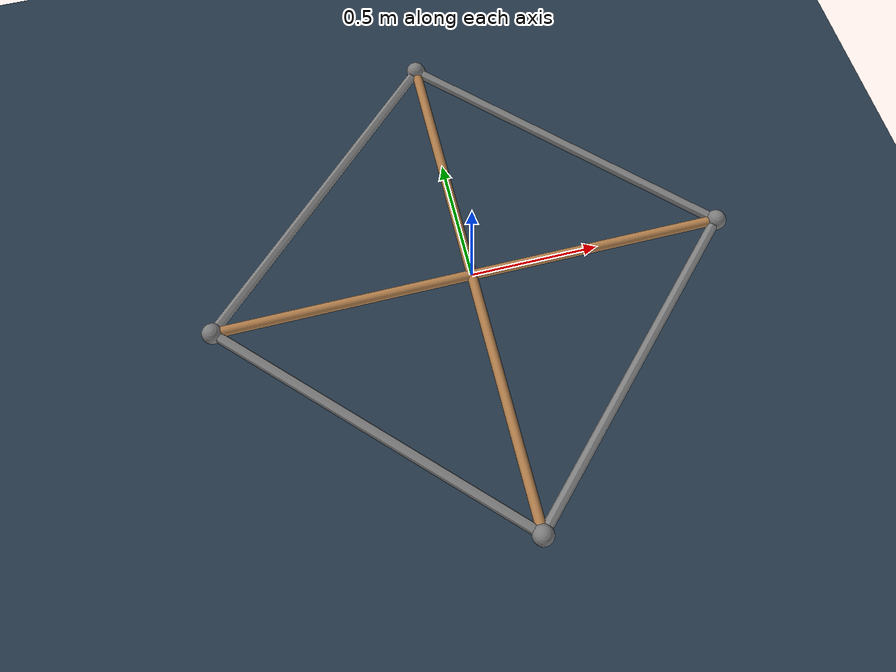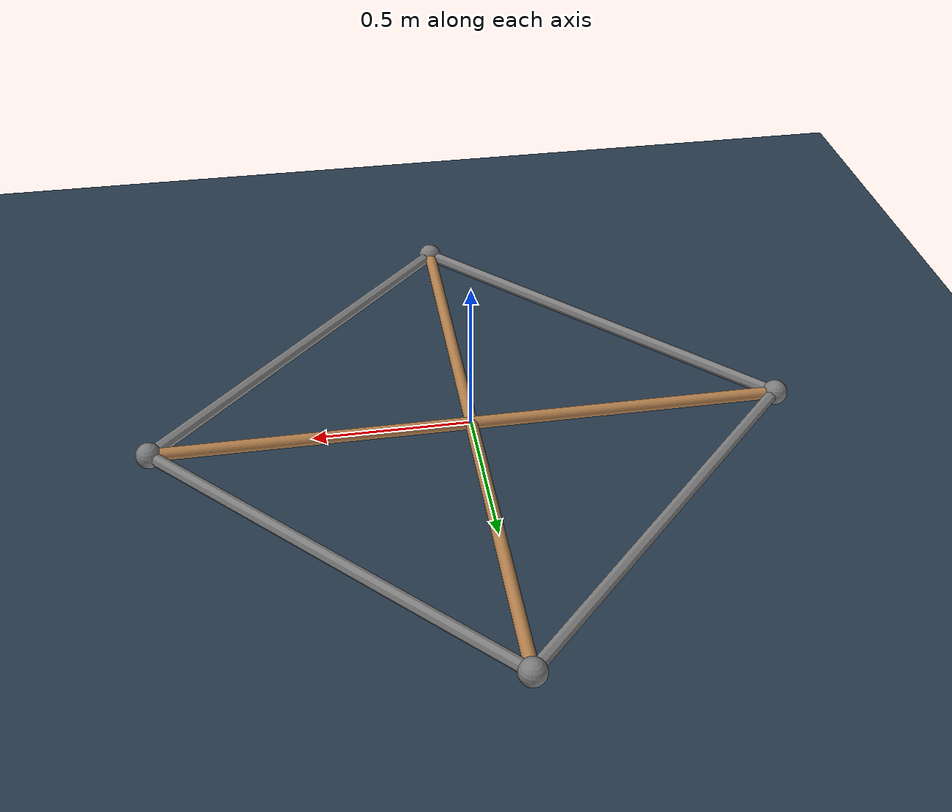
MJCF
<mujoco model="tbar">

    <statistic extent="2" meansize=".05"/>

    <visual>
        <rgba haze="0.15 0.25 0.35 1"/>
        <quality shadowsize="2048"/>
        <map stiffness="700" shadowscale="0.5" fogstart="10" fogend="15" zfar="40" haze="0.3"/>
    </visual>

    <asset>
        <texture type="skybox" builtin="gradient" rgb1=".4 .6 .8" rgb2="0 0 0" width="800" height="800" mark="random" markrgb="1 1 1"/>
        <texture name="texplane" type="2d" builtin="checker" rgb1=".2 .3 .4" rgb2=".1 0.15 0.2"
            width="512" height="512" mark="cross" markrgb=".8 .8 .8"/>

        <material name="matplane" reflectance="0.3" texture="texplane" texrepeat="1 1" texuniform="true"/>
    </asset>

    <worldbody>
        <light directional="true" diffuse=".8 .8 .8" specular=".2 .2 .2" pos="0 0 5" dir="0 0 -1"/>
        <geom name="floor"  pos="0 0 -0.1" size="10 10 0.125" type="plane" material="matplane" condim="3" friction=".9 .05 .05"/>
    </worldbody>

    <visual>
        <headlight ambient=".4 .4 .4" diffuse=".8 .8 .8" specular="0.1 0.1 0.1"/>
        <map znear=".01"/>
        <quality shadowsize="2048"/>
    </visual>

    <option timestep="0.002" iterations="100" solver="Newton" integrator="RK4" jacobian="dense" gravity = "0 0 -9.8" viscosity="0"/>

    <size njmax="5000" nconmax="500" nstack="5000000"/>

    <asset>
        <material name="rod" rgba=".7 .5 .3 1"/>
    </asset>

    <default>
        <motor ctrllimited="false" ctrlrange="-1 1"/>
        <tendon width="0.02" limited="true" range="0 2" stiffness="0.1" damping="0.05" frictionloss=".2"/>
        <geom size="0.02" mass=".1"/>
        <site size="0.04"/>
        <camera pos="0 -10 0"/>
    </default>

    <worldbody>

        <body name="bar1">
            <geom name="bar1" type="capsule" fromto="-1 0 0 1 0 0" material="rod"/>
            <site name="b0" pos="-1 0 0"/>
            <site name="b1" pos="1 0 0"/>
            <joint name="r1" type="free" pos="0 0 0" limited="false" damping="0" armature="0" stiffness="0.2"/>
        </body>

        <body name="bar2">
            <geom name="bar2" type="capsule" fromto="0 -1 0 0 1 0" material="rod"/>
            <site name="b2" pos="0 -1 0"/>
            <site name="b3" pos="0 1 0"/>
            <joint name="r2" type="free" pos="0 0 0" limited="false" damping="0" armature="0" stiffness="0.2"/>
        </body>

    </worldbody>

    <tendon>

        <spatial name="S0" springlength="0 1.4142135623730951">
            <site site="b0"/>
            <site site="b2"/>
        </spatial>

        <spatial name="S1" springlength="0 1.4142135623730951">
            <site site="b0"/>
            <site site="b3"/>
        </spatial>

        <spatial name="S2" springlength="0 1.4142135623730951">
            <site site="b1"/>
            <site site="b2"/>
        </spatial>

        <spatial name="S3" springlength="0 1.4142135623730951">
            <site site="b1"/>
            <site site="b3"/>
        </spatial>

    </tendon>

    <actuator>

        <motor tendon="S0" gear="50"/>

        <motor tendon="S1" gear="50"/>

        <motor tendon="S2" gear="50"/>

        <motor tendon="S3" gear="50"/>

    </actuator>

</mujoco>
